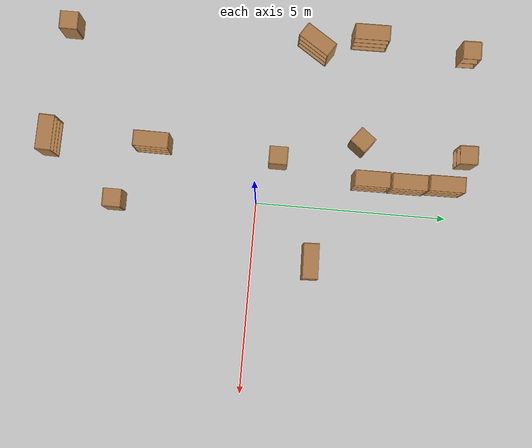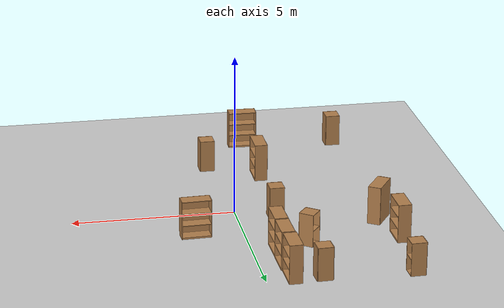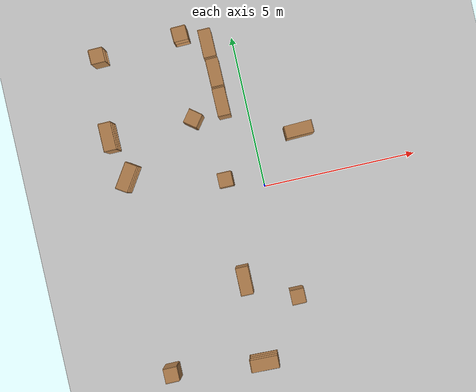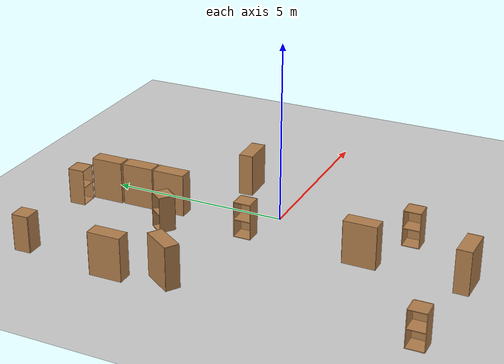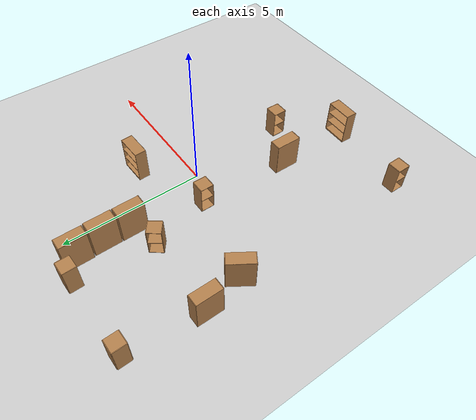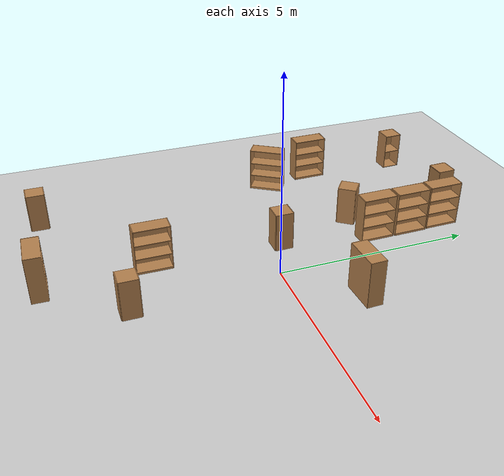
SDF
<sdf version="1.6">
 <world name="default">
  <model name="ground_plane">
   <static>1</static>
   <link name="link">
    <collision name="collision">
     <geometry><plane><normal>0 0 1</normal><size>100 100</size></plane></geometry>
     <surface>
      <contact><collide_bitmask>65535</collide_bitmask></contact>
      <friction><ode><mu>100</mu><mu2>50</mu2></ode></friction>
     </surface>
    </collision>
    <visual name="visual">
     <cast_shadows>0</cast_shadows>
     <geometry><plane><normal>0 0 1</normal><size>100 100</size></plane></geometry>
     <material>
      <script><uri>file://media/materials/scripts/gazebo.material</uri><name>Gazebo/Grey</name></script>
     </material>
    </visual>
   </link>
  </model>
  <model name="bookshelf_clone">
   <static>1</static>
   <link name="link">
    <inertial><mass>1</mass></inertial>
    <collision name="back">
     <pose>0 0.005 0.6 0 -0 0</pose>
     <geometry><box><size>0.9 0.01 1.2</size></box></geometry>
    </collision>
    <visual name="visual1">
     <pose>0 0.005 0.6 0 -0 0</pose>
     <geometry><box><size>0.9 0.01 1.2</size></box></geometry>
     <material>
      <script><uri>file://media/materials/scripts/gazebo.material</uri><name>Gazebo/Wood</name></script>
     </material>
    </visual>
    <collision name="left_side">
     <pose>0.45 -0.195 0.6 0 -0 0</pose>
     <geometry><box><size>0.02 0.4 1.2</size></box></geometry>
    </collision>
    <visual name="visual2">
     <pose>0.45 -0.195 0.6 0 -0 0</pose>
     <geometry><box><size>0.02 0.4 1.2</size></box></geometry>
     <material>
      <script><uri>file://media/materials/scripts/gazebo.material</uri><name>Gazebo/Wood</name></script>
     </material>
    </visual>
    <collision name="right_side">
     <pose>-0.45 -0.195 0.6 0 -0 0</pose>
     <geometry><box><size>0.02 0.4 1.2</size></box></geometry>
    </collision>
    <visual name="visual3">
     <pose>-0.45 -0.195 0.6 0 -0 0</pose>
     <geometry><box><size>0.02 0.4 1.2</size></box></geometry>
     <material>
      <script><uri>file://media/materials/scripts/gazebo.material</uri><name>Gazebo/Wood</name></script>
     </material>
    </visual>
    <collision name="bottom">
     <pose>0 -0.195 0.03 0 -0 0</pose>
     <geometry><box><size>0.88 0.4 0.06</size></box></geometry>
    </collision>
    <visual name="visual4">
     <pose>0 -0.195 0.03 0 -0 0</pose>
     <geometry><box><size>0.88 0.4 0.06</size></box></geometry>
     <material>
      <script><uri>file://media/materials/scripts/gazebo.material</uri><name>Gazebo/Wood</name></script>
     </material>
    </visual>
    <collision name="top">
     <pose>0 -0.195 1.19 0 -0 0</pose>
     <geometry><box><size>0.88 0.4 0.02</size></box></geometry>
    </collision>
    <visual name="visual5">
     <pose>0 -0.195 1.19 0 -0 0</pose>
     <geometry><box><size>0.88 0.4 0.02</size></box></geometry>
     <material>
      <script><uri>file://media/materials/scripts/gazebo.material</uri><name>Gazebo/Wood</name></script>
     </material>
    </visual>
    <collision name="low_shelf">
     <pose>0 -0.195 0.43 0 -0 0</pose>
     <geometry><box><size>0.88 0.4 0.02</size></box></geometry>
    </collision>
    <visual name="visual6">
     <pose>0 -0.195 0.43 0 -0 0</pose>
     <geometry><box><size>0.88 0.4 0.02</size></box></geometry>
     <material>
      <script><uri>file://media/materials/scripts/gazebo.material</uri><name>Gazebo/Wood</name></script>
     </material>
    </visual>
    <collision name="high_shelf">
     <pose>0 -0.195 0.8 0 -0 0</pose>
     <geometry><box><size>0.88 0.4 0.02</size></box></geometry>
    </collision>
    <visual name="visual7">
     <pose>0 -0.195 0.8 0 -0 0</pose>
     <geometry><box><size>0.88 0.4 0.02</size></box></geometry>
     <material>
      <script><uri>file://media/materials/scripts/gazebo.material</uri><name>Gazebo/Wood</name></script>
     </material>
    </visual>
   </link>
   <pose>-0.990469 4.82539 0 0 -0 1.57948</pose>
  </model>
  <model name="bookshelf_clone_2">
   <static>1</static>
   <link name="link">
    <inertial><mass>1</mass></inertial>
    <collision name="back">
     <pose>0 0.005 0.6 0 -0 0</pose>
     <geometry><box><size>0.9 0.01 1.2</size></box></geometry>
    </collision>
    <visual name="visual1">
     <pose>0 0.005 0.6 0 -0 0</pose>
     <geometry><box><size>0.9 0.01 1.2</size></box></geometry>
     <material>
      <script><uri>file://media/materials/scripts/gazebo.material</uri><name>Gazebo/Wood</name></script>
     </material>
    </visual>
    <collision name="left_side">
     <pose>0.45 -0.195 0.6 0 -0 0</pose>
     <geometry><box><size>0.02 0.4 1.2</size></box></geometry>
    </collision>
    <visual name="visual2">
     <pose>0.45 -0.195 0.6 0 -0 0</pose>
     <geometry><box><size>0.02 0.4 1.2</size></box></geometry>
     <material>
      <script><uri>file://media/materials/scripts/gazebo.material</uri><name>Gazebo/Wood</name></script>
     </material>
    </visual>
    <collision name="right_side">
     <pose>-0.45 -0.195 0.6 0 -0 0</pose>
     <geometry><box><size>0.02 0.4 1.2</size></box></geometry>
    </collision>
    <visual name="visual3">
     <pose>-0.45 -0.195 0.6 0 -0 0</pose>
     <geometry><box><size>0.02 0.4 1.2</size></box></geometry>
     <material>
      <script><uri>file://media/materials/scripts/gazebo.material</uri><name>Gazebo/Wood</name></script>
     </material>
    </visual>
    <collision name="bottom">
     <pose>0 -0.195 0.03 0 -0 0</pose>
     <geometry><box><size>0.88 0.4 0.06</size></box></geometry>
    </collision>
    <visual name="visual4">
     <pose>0 -0.195 0.03 0 -0 0</pose>
     <geometry><box><size>0.88 0.4 0.06</size></box></geometry>
     <material>
      <script><uri>file://media/materials/scripts/gazebo.material</uri><name>Gazebo/Wood</name></script>
     </material>
    </visual>
    <collision name="top">
     <pose>0 -0.195 1.19 0 -0 0</pose>
     <geometry><box><size>0.88 0.4 0.02</size></box></geometry>
    </collision>
    <visual name="visual5">
     <pose>0 -0.195 1.19 0 -0 0</pose>
     <geometry><box><size>0.88 0.4 0.02</size></box></geometry>
     <material>
      <script><uri>file://media/materials/scripts/gazebo.material</uri><name>Gazebo/Wood</name></script>
     </material>
    </visual>
    <collision name="low_shelf">
     <pose>0 -0.195 0.43 0 -0 0</pose>
     <geometry><box><size>0.88 0.4 0.02</size></box></geometry>
    </collision>
    <visual name="visual6">
     <pose>0 -0.195 0.43 0 -0 0</pose>
     <geometry><box><size>0.88 0.4 0.02</size></box></geometry>
     <material>
      <script><uri>file://media/materials/scripts/gazebo.material</uri><name>Gazebo/Wood</name></script>
     </material>
    </visual>
    <collision name="high_shelf">
     <pose>0 -0.195 0.8 0 -0 0</pose>
     <geometry><box><size>0.88 0.4 0.02</size></box></geometry>
    </collision>
    <visual name="visual7">
     <pose>0 -0.195 0.8 0 -0 0</pose>
     <geometry><box><size>0.88 0.4 0.02</size></box></geometry>
     <material>
      <script><uri>file://media/materials/scripts/gazebo.material</uri><name>Gazebo/Wood</name></script>
     </material>
    </visual>
   </link>
   <pose>-1.24809 -5.69317 0 0 -0 3.11328</pose>
  </model>
  <model name="bookshelf_clone_3">
   <static>1</static>
   <link name="link">
    <inertial><mass>1</mass></inertial>
    <collision name="back">
     <pose>0 0.005 0.6 0 -0 0</pose>
     <geometry><box><size>0.9 0.01 1.2</size></box></geometry>
    </collision>
    <visual name="visual1">
     <pose>0 0.005 0.6 0 -0 0</pose>
     <geometry><box><size>0.9 0.01 1.2</size></box></geometry>
     <material>
      <script><uri>file://media/materials/scripts/gazebo.material</uri><name>Gazebo/Wood</name></script>
     </material>
    </visual>
    <collision name="left_side">
     <pose>0.45 -0.195 0.6 0 -0 0</pose>
     <geometry><box><size>0.02 0.4 1.2</size></box></geometry>
    </collision>
    <visual name="visual2">
     <pose>0.45 -0.195 0.6 0 -0 0</pose>
     <geometry><box><size>0.02 0.4 1.2</size></box></geometry>
     <material>
      <script><uri>file://media/materials/scripts/gazebo.material</uri><name>Gazebo/Wood</name></script>
     </material>
    </visual>
    <collision name="right_side">
     <pose>-0.45 -0.195 0.6 0 -0 0</pose>
     <geometry><box><size>0.02 0.4 1.2</size></box></geometry>
    </collision>
    <visual name="visual3">
     <pose>-0.45 -0.195 0.6 0 -0 0</pose>
     <geometry><box><size>0.02 0.4 1.2</size></box></geometry>
     <material>
      <script><uri>file://media/materials/scripts/gazebo.material</uri><name>Gazebo/Wood</name></script>
     </material>
    </visual>
    <collision name="bottom">
     <pose>0 -0.195 0.03 0 -0 0</pose>
     <geometry><box><size>0.88 0.4 0.06</size></box></geometry>
    </collision>
    <visual name="visual4">
     <pose>0 -0.195 0.03 0 -0 0</pose>
     <geometry><box><size>0.88 0.4 0.06</size></box></geometry>
     <material>
      <script><uri>file://media/materials/scripts/gazebo.material</uri><name>Gazebo/Wood</name></script>
     </material>
    </visual>
    <collision name="top">
     <pose>0 -0.195 1.19 0 -0 0</pose>
     <geometry><box><size>0.88 0.4 0.02</size></box></geometry>
    </collision>
    <visual name="visual5">
     <pose>0 -0.195 1.19 0 -0 0</pose>
     <geometry><box><size>0.88 0.4 0.02</size></box></geometry>
     <material>
      <script><uri>file://media/materials/scripts/gazebo.material</uri><name>Gazebo/Wood</name></script>
     </material>
    </visual>
    <collision name="low_shelf">
     <pose>0 -0.195 0.43 0 -0 0</pose>
     <geometry><box><size>0.88 0.4 0.02</size></box></geometry>
    </collision>
    <visual name="visual6">
     <pose>0 -0.195 0.43 0 -0 0</pose>
     <geometry><box><size>0.88 0.4 0.02</size></box></geometry>
     <material>
      <script><uri>file://media/materials/scripts/gazebo.material</uri><name>Gazebo/Wood</name></script>
     </material>
    </visual>
    <collision name="high_shelf">
     <pose>0 -0.195 0.8 0 -0 0</pose>
     <geometry><box><size>0.88 0.4 0.02</size></box></geometry>
    </collision>
    <visual name="visual7">
     <pose>0 -0.195 0.8 0 -0 0</pose>
     <geometry><box><size>0.88 0.4 0.02</size></box></geometry>
     <material>
      <script><uri>file://media/materials/scripts/gazebo.material</uri><name>Gazebo/Wood</name></script>
     </material>
    </visual>
   </link>
   <pose>-1.48553 -2.79449 0 0 -0 1.56323</pose>
  </model>
  <model name="cabinet_clone">
   <static>1</static>
   <link name="cabinet_bottom_plate">
    <inertial>
     <pose>0 0 -1 0 -0 0</pose>
     <inertia><ixx>2.05</ixx><ixy>0</ixy><ixz>0</ixz><iyy>2.05</iyy><iyz>0</iyz><izz>2.05</izz></inertia>
     <mass>25</mass>
    </inertial>
    <collision name="cabinet_bottom_plate_geom">
     <pose>0 0 0.01 0 -0 0</pose>
     <geometry><box><size>0.45 0.45 0.02</size></box></geometry>
    </collision>
    <visual name="cabinet_bottom_plate_geom_visual">
     <pose>0 0 0.01 0 -0 0</pose>
     <geometry><box><size>0.45 0.45 0.02</size></box></geometry>
     <material>
      <script><uri>file://media/materials/scripts/gazebo.material</uri><name>Gazebo/Wood</name></script>
     </material>
    </visual>
    <collision name="cabinet_bottom_plate_geom_cabinet_back_plate">
     <pose>0.235 0 0.51 0 -0 0</pose>
     <geometry><box><size>0.02 0.45 1.02</size></box></geometry>
    </collision>
    <visual name="cabinet_bottom_plate_geom_cabinet_back_plate_visual">
     <pose>0.235 0 0.51 0 -0 0</pose>
     <geometry><box><size>0.02 0.45 1.02</size></box></geometry>
     <material>
      <script><uri>file://media/materials/scripts/gazebo.material</uri><name>Gazebo/Wood</name></script>
     </material>
    </visual>
    <collision name="cabinet_bottom_plate_geom_cabinet_left_plate">
     <pose>0 0.235 0.51 0 -0 0</pose>
     <geometry><box><size>0.45 0.02 1.02</size></box></geometry>
    </collision>
    <visual name="cabinet_bottom_plate_geom_cabinet_left_plate_visual">
     <pose>0 0.235 0.51 0 -0 0</pose>
     <geometry><box><size>0.45 0.02 1.02</size></box></geometry>
     <material>
      <script><uri>file://media/materials/scripts/gazebo.material</uri><name>Gazebo/Wood</name></script>
     </material>
    </visual>
    <collision name="cabinet_bottom_plate_geom_cabinet_middle_plate">
     <pose>0 0 0.51 0 -0 0</pose>
     <geometry><box><size>0.45 0.45 0.02</size></box></geometry>
    </collision>
    <visual name="cabinet_bottom_plate_geom_cabinet_middle_plate_visual">
     <pose>0 0 0.51 0 -0 0</pose>
     <geometry><box><size>0.45 0.45 0.02</size></box></geometry>
     <material>
      <script><uri>file://media/materials/scripts/gazebo.material</uri><name>Gazebo/Wood</name></script>
     </material>
    </visual>
    <collision name="cabinet_bottom_plate_geom_cabinet_right_plate">
     <pose>0 -0.235 0.51 0 -0 0</pose>
     <geometry><box><size>0.45 0.02 1.02</size></box></geometry>
    </collision>
    <visual name="cabinet_bottom_plate_geom_cabinet_right_plate_visual">
     <pose>0 -0.235 0.51 0 -0 0</pose>
     <geometry><box><size>0.45 0.02 1.02</size></box></geometry>
     <material>
      <script><uri>file://media/materials/scripts/gazebo.material</uri><name>Gazebo/Wood</name></script>
     </material>
    </visual>
    <collision name="cabinet_bottom_plate_geom_cabinet_top_plate">
     <pose>0 0 1.01 0 -0 0</pose>
     <geometry><box><size>0.45 0.45 0.02</size></box></geometry>
    </collision>
    <visual name="cabinet_bottom_plate_geom_cabinet_top_plate_visual">
     <pose>0 0 1.01 0 -0 0</pose>
     <geometry><box><size>0.45 0.45 0.02</size></box></geometry>
     <material>
      <script><uri>file://media/materials/scripts/gazebo.material</uri><name>Gazebo/Wood</name></script>
     </material>
    </visual>
   </link>
   <pose>-4.30746 5.22093 0.043779 0 0 -3.11635</pose>
  </model>
  <model name="bookshelf_clone_clone">
   <static>1</static>
   <link name="link">
    <inertial><mass>1</mass></inertial>
    <collision name="back">
     <pose>0 0.005 0.6 0 -0 0</pose>
     <geometry><box><size>0.9 0.01 1.2</size></box></geometry>
    </collision>
    <visual name="visual1">
     <pose>0 0.005 0.6 0 -0 0</pose>
     <geometry><box><size>0.9 0.01 1.2</size></box></geometry>
     <material>
      <script><uri>file://media/materials/scripts/gazebo.material</uri><name>Gazebo/Wood</name></script>
     </material>
    </visual>
    <collision name="left_side">
     <pose>0.45 -0.195 0.6 0 -0 0</pose>
     <geometry><box><size>0.02 0.4 1.2</size></box></geometry>
    </collision>
    <visual name="visual2">
     <pose>0.45 -0.195 0.6 0 -0 0</pose>
     <geometry><box><size>0.02 0.4 1.2</size></box></geometry>
     <material>
      <script><uri>file://media/materials/scripts/gazebo.material</uri><name>Gazebo/Wood</name></script>
     </material>
    </visual>
    <collision name="right_side">
     <pose>-0.45 -0.195 0.6 0 -0 0</pose>
     <geometry><box><size>0.02 0.4 1.2</size></box></geometry>
    </collision>
    <visual name="visual3">
     <pose>-0.45 -0.195 0.6 0 -0 0</pose>
     <geometry><box><size>0.02 0.4 1.2</size></box></geometry>
     <material>
      <script><uri>file://media/materials/scripts/gazebo.material</uri><name>Gazebo/Wood</name></script>
     </material>
    </visual>
    <collision name="bottom">
     <pose>0 -0.195 0.03 0 -0 0</pose>
     <geometry><box><size>0.88 0.4 0.06</size></box></geometry>
    </collision>
    <visual name="visual4">
     <pose>0 -0.195 0.03 0 -0 0</pose>
     <geometry><box><size>0.88 0.4 0.06</size></box></geometry>
     <material>
      <script><uri>file://media/materials/scripts/gazebo.material</uri><name>Gazebo/Wood</name></script>
     </material>
    </visual>
    <collision name="top">
     <pose>0 -0.195 1.19 0 -0 0</pose>
     <geometry><box><size>0.88 0.4 0.02</size></box></geometry>
    </collision>
    <visual name="visual5">
     <pose>0 -0.195 1.19 0 -0 0</pose>
     <geometry><box><size>0.88 0.4 0.02</size></box></geometry>
     <material>
      <script><uri>file://media/materials/scripts/gazebo.material</uri><name>Gazebo/Wood</name></script>
     </material>
    </visual>
    <collision name="low_shelf">
     <pose>0 -0.195 0.43 0 -0 0</pose>
     <geometry><box><size>0.88 0.4 0.02</size></box></geometry>
    </collision>
    <visual name="visual6">
     <pose>0 -0.195 0.43 0 -0 0</pose>
     <geometry><box><size>0.88 0.4 0.02</size></box></geometry>
     <material>
      <script><uri>file://media/materials/scripts/gazebo.material</uri><name>Gazebo/Wood</name></script>
     </material>
    </visual>
    <collision name="high_shelf">
     <pose>0 -0.195 0.8 0 -0 0</pose>
     <geometry><box><size>0.88 0.4 0.02</size></box></geometry>
    </collision>
    <visual name="visual7">
     <pose>0 -0.195 0.8 0 -0 0</pose>
     <geometry><box><size>0.88 0.4 0.02</size></box></geometry>
     <material>
      <script><uri>file://media/materials/scripts/gazebo.material</uri><name>Gazebo/Wood</name></script>
     </material>
    </visual>
   </link>
   <pose>-0.957403 3.86885 0 0 -0 1.57948</pose>
  </model>
  <model name="bookshelf_clone_clone_0">
   <static>1</static>
   <link name="link">
    <inertial><mass>1</mass></inertial>
    <collision name="back">
     <pose>0 0.005 0.6 0 -0 0</pose>
     <geometry><box><size>0.9 0.01 1.2</size></box></geometry>
    </collision>
    <visual name="visual1">
     <pose>0 0.005 0.6 0 -0 0</pose>
     <geometry><box><size>0.9 0.01 1.2</size></box></geometry>
     <material>
      <script><uri>file://media/materials/scripts/gazebo.material</uri><name>Gazebo/Wood</name></script>
     </material>
    </visual>
    <collision name="left_side">
     <pose>0.45 -0.195 0.6 0 -0 0</pose>
     <geometry><box><size>0.02 0.4 1.2</size></box></geometry>
    </collision>
    <visual name="visual2">
     <pose>0.45 -0.195 0.6 0 -0 0</pose>
     <geometry><box><size>0.02 0.4 1.2</size></box></geometry>
     <material>
      <script><uri>file://media/materials/scripts/gazebo.material</uri><name>Gazebo/Wood</name></script>
     </material>
    </visual>
    <collision name="right_side">
     <pose>-0.45 -0.195 0.6 0 -0 0</pose>
     <geometry><box><size>0.02 0.4 1.2</size></box></geometry>
    </collision>
    <visual name="visual3">
     <pose>-0.45 -0.195 0.6 0 -0 0</pose>
     <geometry><box><size>0.02 0.4 1.2</size></box></geometry>
     <material>
      <script><uri>file://media/materials/scripts/gazebo.material</uri><name>Gazebo/Wood</name></script>
     </material>
    </visual>
    <collision name="bottom">
     <pose>0 -0.195 0.03 0 -0 0</pose>
     <geometry><box><size>0.88 0.4 0.06</size></box></geometry>
    </collision>
    <visual name="visual4">
     <pose>0 -0.195 0.03 0 -0 0</pose>
     <geometry><box><size>0.88 0.4 0.06</size></box></geometry>
     <material>
      <script><uri>file://media/materials/scripts/gazebo.material</uri><name>Gazebo/Wood</name></script>
     </material>
    </visual>
    <collision name="top">
     <pose>0 -0.195 1.19 0 -0 0</pose>
     <geometry><box><size>0.88 0.4 0.02</size></box></geometry>
    </collision>
    <visual name="visual5">
     <pose>0 -0.195 1.19 0 -0 0</pose>
     <geometry><box><size>0.88 0.4 0.02</size></box></geometry>
     <material>
      <script><uri>file://media/materials/scripts/gazebo.material</uri><name>Gazebo/Wood</name></script>
     </material>
    </visual>
    <collision name="low_shelf">
     <pose>0 -0.195 0.43 0 -0 0</pose>
     <geometry><box><size>0.88 0.4 0.02</size></box></geometry>
    </collision>
    <visual name="visual6">
     <pose>0 -0.195 0.43 0 -0 0</pose>
     <geometry><box><size>0.88 0.4 0.02</size></box></geometry>
     <material>
      <script><uri>file://media/materials/scripts/gazebo.material</uri><name>Gazebo/Wood</name></script>
     </material>
    </visual>
    <collision name="high_shelf">
     <pose>0 -0.195 0.8 0 -0 0</pose>
     <geometry><box><size>0.88 0.4 0.02</size></box></geometry>
    </collision>
    <visual name="visual7">
     <pose>0 -0.195 0.8 0 -0 0</pose>
     <geometry><box><size>0.88 0.4 0.02</size></box></geometry>
     <material>
      <script><uri>file://media/materials/scripts/gazebo.material</uri><name>Gazebo/Wood</name></script>
     </material>
    </visual>
   </link>
   <pose>-0.955662 2.91292 0 0 -0 1.57948</pose>
  </model>
  <model name="bookshelf_clone_clone_1">
   <static>1</static>
   <link name="link">
    <inertial><mass>1</mass></inertial>
    <collision name="back">
     <pose>0 0.005 0.6 0 -0 0</pose>
     <geometry><box><size>0.9 0.01 1.2</size></box></geometry>
    </collision>
    <visual name="visual1">
     <pose>0 0.005 0.6 0 -0 0</pose>
     <geometry><box><size>0.9 0.01 1.2</size></box></geometry>
     <material>
      <script><uri>file://media/materials/scripts/gazebo.material</uri><name>Gazebo/Wood</name></script>
     </material>
    </visual>
    <collision name="left_side">
     <pose>0.45 -0.195 0.6 0 -0 0</pose>
     <geometry><box><size>0.02 0.4 1.2</size></box></geometry>
    </collision>
    <visual name="visual2">
     <pose>0.45 -0.195 0.6 0 -0 0</pose>
     <geometry><box><size>0.02 0.4 1.2</size></box></geometry>
     <material>
      <script><uri>file://media/materials/scripts/gazebo.material</uri><name>Gazebo/Wood</name></script>
     </material>
    </visual>
    <collision name="right_side">
     <pose>-0.45 -0.195 0.6 0 -0 0</pose>
     <geometry><box><size>0.02 0.4 1.2</size></box></geometry>
    </collision>
    <visual name="visual3">
     <pose>-0.45 -0.195 0.6 0 -0 0</pose>
     <geometry><box><size>0.02 0.4 1.2</size></box></geometry>
     <material>
      <script><uri>file://media/materials/scripts/gazebo.material</uri><name>Gazebo/Wood</name></script>
     </material>
    </visual>
    <collision name="bottom">
     <pose>0 -0.195 0.03 0 -0 0</pose>
     <geometry><box><size>0.88 0.4 0.06</size></box></geometry>
    </collision>
    <visual name="visual4">
     <pose>0 -0.195 0.03 0 -0 0</pose>
     <geometry><box><size>0.88 0.4 0.06</size></box></geometry>
     <material>
      <script><uri>file://media/materials/scripts/gazebo.material</uri><name>Gazebo/Wood</name></script>
     </material>
    </visual>
    <collision name="top">
     <pose>0 -0.195 1.19 0 -0 0</pose>
     <geometry><box><size>0.88 0.4 0.02</size></box></geometry>
    </collision>
    <visual name="visual5">
     <pose>0 -0.195 1.19 0 -0 0</pose>
     <geometry><box><size>0.88 0.4 0.02</size></box></geometry>
     <material>
      <script><uri>file://media/materials/scripts/gazebo.material</uri><name>Gazebo/Wood</name></script>
     </material>
    </visual>
    <collision name="low_shelf">
     <pose>0 -0.195 0.43 0 -0 0</pose>
     <geometry><box><size>0.88 0.4 0.02</size></box></geometry>
    </collision>
    <visual name="visual6">
     <pose>0 -0.195 0.43 0 -0 0</pose>
     <geometry><box><size>0.88 0.4 0.02</size></box></geometry>
     <material>
      <script><uri>file://media/materials/scripts/gazebo.material</uri><name>Gazebo/Wood</name></script>
     </material>
    </visual>
    <collision name="high_shelf">
     <pose>0 -0.195 0.8 0 -0 0</pose>
     <geometry><box><size>0.88 0.4 0.02</size></box></geometry>
    </collision>
    <visual name="visual7">
     <pose>0 -0.195 0.8 0 -0 0</pose>
     <geometry><box><size>0.88 0.4 0.02</size></box></geometry>
     <material>
      <script><uri>file://media/materials/scripts/gazebo.material</uri><name>Gazebo/Wood</name></script>
     </material>
    </visual>
   </link>
   <pose>1.45803 1.32606 0 0 0 -3.10742</pose>
  </model>
  <model name="bookshelf_clone_clone_2">
   <static>1</static>
   <link name="link">
    <inertial><mass>1</mass></inertial>
    <collision name="back">
     <pose>0 0.005 0.6 0 -0 0</pose>
     <geometry><box><size>0.9 0.01 1.2</size></box></geometry>
    </collision>
    <visual name="visual1">
     <pose>0 0.005 0.6 0 -0 0</pose>
     <geometry><box><size>0.9 0.01 1.2</size></box></geometry>
     <material>
      <script><uri>file://media/materials/scripts/gazebo.material</uri><name>Gazebo/Wood</name></script>
     </material>
    </visual>
    <collision name="left_side">
     <pose>0.45 -0.195 0.6 0 -0 0</pose>
     <geometry><box><size>0.02 0.4 1.2</size></box></geometry>
    </collision>
    <visual name="visual2">
     <pose>0.45 -0.195 0.6 0 -0 0</pose>
     <geometry><box><size>0.02 0.4 1.2</size></box></geometry>
     <material>
      <script><uri>file://media/materials/scripts/gazebo.material</uri><name>Gazebo/Wood</name></script>
     </material>
    </visual>
    <collision name="right_side">
     <pose>-0.45 -0.195 0.6 0 -0 0</pose>
     <geometry><box><size>0.02 0.4 1.2</size></box></geometry>
    </collision>
    <visual name="visual3">
     <pose>-0.45 -0.195 0.6 0 -0 0</pose>
     <geometry><box><size>0.02 0.4 1.2</size></box></geometry>
     <material>
      <script><uri>file://media/materials/scripts/gazebo.material</uri><name>Gazebo/Wood</name></script>
     </material>
    </visual>
    <collision name="bottom">
     <pose>0 -0.195 0.03 0 -0 0</pose>
     <geometry><box><size>0.88 0.4 0.06</size></box></geometry>
    </collision>
    <visual name="visual4">
     <pose>0 -0.195 0.03 0 -0 0</pose>
     <geometry><box><size>0.88 0.4 0.06</size></box></geometry>
     <material>
      <script><uri>file://media/materials/scripts/gazebo.material</uri><name>Gazebo/Wood</name></script>
     </material>
    </visual>
    <collision name="top">
     <pose>0 -0.195 1.19 0 -0 0</pose>
     <geometry><box><size>0.88 0.4 0.02</size></box></geometry>
    </collision>
    <visual name="visual5">
     <pose>0 -0.195 1.19 0 -0 0</pose>
     <geometry><box><size>0.88 0.4 0.02</size></box></geometry>
     <material>
      <script><uri>file://media/materials/scripts/gazebo.material</uri><name>Gazebo/Wood</name></script>
     </material>
    </visual>
    <collision name="low_shelf">
     <pose>0 -0.195 0.43 0 -0 0</pose>
     <geometry><box><size>0.88 0.4 0.02</size></box></geometry>
    </collision>
    <visual name="visual6">
     <pose>0 -0.195 0.43 0 -0 0</pose>
     <geometry><box><size>0.88 0.4 0.02</size></box></geometry>
     <material>
      <script><uri>file://media/materials/scripts/gazebo.material</uri><name>Gazebo/Wood</name></script>
     </material>
    </visual>
    <collision name="high_shelf">
     <pose>0 -0.195 0.8 0 -0 0</pose>
     <geometry><box><size>0.88 0.4 0.02</size></box></geometry>
    </collision>
    <visual name="visual7">
     <pose>0 -0.195 0.8 0 -0 0</pose>
     <geometry><box><size>0.88 0.4 0.02</size></box></geometry>
     <material>
      <script><uri>file://media/materials/scripts/gazebo.material</uri><name>Gazebo/Wood</name></script>
     </material>
    </visual>
   </link>
   <pose>-4.72678 2.62015 0 0 -0 1.57948</pose>
  </model>
  <model name="cabinet_clone_clone">
   <static>1</static>
   <link name="cabinet_bottom_plate">
    <inertial>
     <pose>0 0 -1 0 -0 0</pose>
     <inertia><ixx>2.05</ixx><ixy>0</ixy><ixz>0</ixz><iyy>2.05</iyy><iyz>0</iyz><izz>2.05</izz></inertia>
     <mass>25</mass>
    </inertial>
    <collision name="cabinet_bottom_plate_geom">
     <pose>0 0 0.01 0 -0 0</pose>
     <geometry><box><size>0.45 0.45 0.02</size></box></geometry>
    </collision>
    <visual name="cabinet_bottom_plate_geom_visual">
     <pose>0 0 0.01 0 -0 0</pose>
     <geometry><box><size>0.45 0.45 0.02</size></box></geometry>
     <material>
      <script><uri>file://media/materials/scripts/gazebo.material</uri><name>Gazebo/Wood</name></script>
     </material>
    </visual>
    <collision name="cabinet_bottom_plate_geom_cabinet_back_plate">
     <pose>0.235 0 0.51 0 -0 0</pose>
     <geometry><box><size>0.02 0.45 1.02</size></box></geometry>
    </collision>
    <visual name="cabinet_bottom_plate_geom_cabinet_back_plate_visual">
     <pose>0.235 0 0.51 0 -0 0</pose>
     <geometry><box><size>0.02 0.45 1.02</size></box></geometry>
     <material>
      <script><uri>file://media/materials/scripts/gazebo.material</uri><name>Gazebo/Wood</name></script>
     </material>
    </visual>
    <collision name="cabinet_bottom_plate_geom_cabinet_left_plate">
     <pose>0 0.235 0.51 0 -0 0</pose>
     <geometry><box><size>0.45 0.02 1.02</size></box></geometry>
    </collision>
    <visual name="cabinet_bottom_plate_geom_cabinet_left_plate_visual">
     <pose>0 0.235 0.51 0 -0 0</pose>
     <geometry><box><size>0.45 0.02 1.02</size></box></geometry>
     <material>
      <script><uri>file://media/materials/scripts/gazebo.material</uri><name>Gazebo/Wood</name></script>
     </material>
    </visual>
    <collision name="cabinet_bottom_plate_geom_cabinet_middle_plate">
     <pose>0 0 0.51 0 -0 0</pose>
     <geometry><box><size>0.45 0.45 0.02</size></box></geometry>
    </collision>
    <visual name="cabinet_bottom_plate_geom_cabinet_middle_plate_visual">
     <pose>0 0 0.51 0 -0 0</pose>
     <geometry><box><size>0.45 0.45 0.02</size></box></geometry>
     <material>
      <script><uri>file://media/materials/scripts/gazebo.material</uri><name>Gazebo/Wood</name></script>
     </material>
    </visual>
    <collision name="cabinet_bottom_plate_geom_cabinet_right_plate">
     <pose>0 -0.235 0.51 0 -0 0</pose>
     <geometry><box><size>0.45 0.02 1.02</size></box></geometry>
    </collision>
    <visual name="cabinet_bottom_plate_geom_cabinet_right_plate_visual">
     <pose>0 -0.235 0.51 0 -0 0</pose>
     <geometry><box><size>0.45 0.02 1.02</size></box></geometry>
     <material>
      <script><uri>file://media/materials/scripts/gazebo.material</uri><name>Gazebo/Wood</name></script>
     </material>
    </visual>
    <collision name="cabinet_bottom_plate_geom_cabinet_top_plate">
     <pose>0 0 1.01 0 -0 0</pose>
     <geometry><box><size>0.45 0.45 0.02</size></box></geometry>
    </collision>
    <visual name="cabinet_bottom_plate_geom_cabinet_top_plate_visual">
     <pose>0 0 1.01 0 -0 0</pose>
     <geometry><box><size>0.45 0.45 0.02</size></box></geometry>
     <material>
      <script><uri>file://media/materials/scripts/gazebo.material</uri><name>Gazebo/Wood</name></script>
     </material>
    </visual>
   </link>
   <pose>-1.5796 5.30586 0.15688 0 -0 1.6015</pose>
  </model>
  <model name="cabinet_clone_4">
   <static>1</static>
   <link name="cabinet_bottom_plate">
    <inertial>
     <pose>0 0 -1 0 -0 0</pose>
     <inertia><ixx>2.05</ixx><ixy>0</ixy><ixz>0</ixz><iyy>2.05</iyy><iyz>0</iyz><izz>2.05</izz></inertia>
     <mass>25</mass>
    </inertial>
    <collision name="cabinet_bottom_plate_geom">
     <pose>0 0 0.01 0 -0 0</pose>
     <geometry><box><size>0.45 0.45 0.02</size></box></geometry>
    </collision>
    <visual name="cabinet_bottom_plate_geom_visual">
     <pose>0 0 0.01 0 -0 0</pose>
     <geometry><box><size>0.45 0.45 0.02</size></box></geometry>
     <material>
      <script><uri>file://media/materials/scripts/gazebo.material</uri><name>Gazebo/Wood</name></script>
     </material>
    </visual>
    <collision name="cabinet_bottom_plate_geom_cabinet_back_plate">
     <pose>0.235 0 0.51 0 -0 0</pose>
     <geometry><box><size>0.02 0.45 1.02</size></box></geometry>
    </collision>
    <visual name="cabinet_bottom_plate_geom_cabinet_back_plate_visual">
     <pose>0.235 0 0.51 0 -0 0</pose>
     <geometry><box><size>0.02 0.45 1.02</size></box></geometry>
     <material>
      <script><uri>file://media/materials/scripts/gazebo.material</uri><name>Gazebo/Wood</name></script>
     </material>
    </visual>
    <collision name="cabinet_bottom_plate_geom_cabinet_left_plate">
     <pose>0 0.235 0.51 0 -0 0</pose>
     <geometry><box><size>0.45 0.02 1.02</size></box></geometry>
    </collision>
    <visual name="cabinet_bottom_plate_geom_cabinet_left_plate_visual">
     <pose>0 0.235 0.51 0 -0 0</pose>
     <geometry><box><size>0.45 0.02 1.02</size></box></geometry>
     <material>
      <script><uri>file://media/materials/scripts/gazebo.material</uri><name>Gazebo/Wood</name></script>
     </material>
    </visual>
    <collision name="cabinet_bottom_plate_geom_cabinet_middle_plate">
     <pose>0 0 0.51 0 -0 0</pose>
     <geometry><box><size>0.45 0.45 0.02</size></box></geometry>
    </collision>
    <visual name="cabinet_bottom_plate_geom_cabinet_middle_plate_visual">
     <pose>0 0 0.51 0 -0 0</pose>
     <geometry><box><size>0.45 0.45 0.02</size></box></geometry>
     <material>
      <script><uri>file://media/materials/scripts/gazebo.material</uri><name>Gazebo/Wood</name></script>
     </material>
    </visual>
    <collision name="cabinet_bottom_plate_geom_cabinet_right_plate">
     <pose>0 -0.235 0.51 0 -0 0</pose>
     <geometry><box><size>0.45 0.02 1.02</size></box></geometry>
    </collision>
    <visual name="cabinet_bottom_plate_geom_cabinet_right_plate_visual">
     <pose>0 -0.235 0.51 0 -0 0</pose>
     <geometry><box><size>0.45 0.02 1.02</size></box></geometry>
     <material>
      <script><uri>file://media/materials/scripts/gazebo.material</uri><name>Gazebo/Wood</name></script>
     </material>
    </visual>
    <collision name="cabinet_bottom_plate_geom_cabinet_top_plate">
     <pose>0 0 1.01 0 -0 0</pose>
     <geometry><box><size>0.45 0.45 0.02</size></box></geometry>
    </collision>
    <visual name="cabinet_bottom_plate_geom_cabinet_top_plate_visual">
     <pose>0 0 1.01 0 -0 0</pose>
     <geometry><box><size>0.45 0.45 0.02</size></box></geometry>
     <material>
      <script><uri>file://media/materials/scripts/gazebo.material</uri><name>Gazebo/Wood</name></script>
     </material>
    </visual>
   </link>
   <pose>0.255916 -3.6654 -0.005029 0 -0 0</pose>
  </model>
  <model name="cabinet_clone_5">
   <static>1</static>
   <link name="cabinet_bottom_plate">
    <inertial>
     <pose>0 0 -1 0 -0 0</pose>
     <inertia><ixx>2.05</ixx><ixy>0</ixy><ixz>0</ixz><iyy>2.05</iyy><iyz>0</iyz><izz>2.05</izz></inertia>
     <mass>25</mass>
    </inertial>
    <collision name="cabinet_bottom_plate_geom">
     <pose>0 0 0.01 0 -0 0</pose>
     <geometry><box><size>0.45 0.45 0.02</size></box></geometry>
    </collision>
    <visual name="cabinet_bottom_plate_geom_visual">
     <pose>0 0 0.01 0 -0 0</pose>
     <geometry><box><size>0.45 0.45 0.02</size></box></geometry>
     <material>
      <script><uri>file://media/materials/scripts/gazebo.material</uri><name>Gazebo/Wood</name></script>
     </material>
    </visual>
    <collision name="cabinet_bottom_plate_geom_cabinet_back_plate">
     <pose>0.235 0 0.51 0 -0 0</pose>
     <geometry><box><size>0.02 0.45 1.02</size></box></geometry>
    </collision>
    <visual name="cabinet_bottom_plate_geom_cabinet_back_plate_visual">
     <pose>0.235 0 0.51 0 -0 0</pose>
     <geometry><box><size>0.02 0.45 1.02</size></box></geometry>
     <material>
      <script><uri>file://media/materials/scripts/gazebo.material</uri><name>Gazebo/Wood</name></script>
     </material>
    </visual>
    <collision name="cabinet_bottom_plate_geom_cabinet_left_plate">
     <pose>0 0.235 0.51 0 -0 0</pose>
     <geometry><box><size>0.45 0.02 1.02</size></box></geometry>
    </collision>
    <visual name="cabinet_bottom_plate_geom_cabinet_left_plate_visual">
     <pose>0 0.235 0.51 0 -0 0</pose>
     <geometry><box><size>0.45 0.02 1.02</size></box></geometry>
     <material>
      <script><uri>file://media/materials/scripts/gazebo.material</uri><name>Gazebo/Wood</name></script>
     </material>
    </visual>
    <collision name="cabinet_bottom_plate_geom_cabinet_middle_plate">
     <pose>0 0 0.51 0 -0 0</pose>
     <geometry><box><size>0.45 0.45 0.02</size></box></geometry>
    </collision>
    <visual name="cabinet_bottom_plate_geom_cabinet_middle_plate_visual">
     <pose>0 0 0.51 0 -0 0</pose>
     <geometry><box><size>0.45 0.45 0.02</size></box></geometry>
     <material>
      <script><uri>file://media/materials/scripts/gazebo.material</uri><name>Gazebo/Wood</name></script>
     </material>
    </visual>
    <collision name="cabinet_bottom_plate_geom_cabinet_right_plate">
     <pose>0 -0.235 0.51 0 -0 0</pose>
     <geometry><box><size>0.45 0.02 1.02</size></box></geometry>
    </collision>
    <visual name="cabinet_bottom_plate_geom_cabinet_right_plate_visual">
     <pose>0 -0.235 0.51 0 -0 0</pose>
     <geometry><box><size>0.45 0.02 1.02</size></box></geometry>
     <material>
      <script><uri>file://media/materials/scripts/gazebo.material</uri><name>Gazebo/Wood</name></script>
     </material>
    </visual>
    <collision name="cabinet_bottom_plate_geom_cabinet_top_plate">
     <pose>0 0 1.01 0 -0 0</pose>
     <geometry><box><size>0.45 0.45 0.02</size></box></geometry>
    </collision>
    <visual name="cabinet_bottom_plate_geom_cabinet_top_plate_visual">
     <pose>0 0 1.01 0 -0 0</pose>
     <geometry><box><size>0.45 0.45 0.02</size></box></geometry>
     <material>
      <script><uri>file://media/materials/scripts/gazebo.material</uri><name>Gazebo/Wood</name></script>
     </material>
    </visual>
   </link>
   <pose>-1.18881 0.48109 -0.005029 0 -0 0</pose>
  </model>
  <model name="cabinet_clone_6">
   <static>1</static>
   <link name="cabinet_bottom_plate">
    <inertial>
     <pose>0 0 -1 0 -0 0</pose>
     <inertia><ixx>2.05</ixx><ixy>0</ixy><ixz>0</ixz><iyy>2.05</iyy><iyz>0</iyz><izz>2.05</izz></inertia>
     <mass>25</mass>
    </inertial>
    <collision name="cabinet_bottom_plate_geom">
     <pose>0 0 0.01 0 -0 0</pose>
     <geometry><box><size>0.45 0.45 0.02</size></box></geometry>
    </collision>
    <visual name="cabinet_bottom_plate_geom_visual">
     <pose>0 0 0.01 0 -0 0</pose>
     <geometry><box><size>0.45 0.45 0.02</size></box></geometry>
     <material>
      <script><uri>file://media/materials/scripts/gazebo.material</uri><name>Gazebo/Wood</name></script>
     </material>
    </visual>
    <collision name="cabinet_bottom_plate_geom_cabinet_back_plate">
     <pose>0.235 0 0.51 0 -0 0</pose>
     <geometry><box><size>0.02 0.45 1.02</size></box></geometry>
    </collision>
    <visual name="cabinet_bottom_plate_geom_cabinet_back_plate_visual">
     <pose>0.235 0 0.51 0 -0 0</pose>
     <geometry><box><size>0.02 0.45 1.02</size></box></geometry>
     <material>
      <script><uri>file://media/materials/scripts/gazebo.material</uri><name>Gazebo/Wood</name></script>
     </material>
    </visual>
    <collision name="cabinet_bottom_plate_geom_cabinet_left_plate">
     <pose>0 0.235 0.51 0 -0 0</pose>
     <geometry><box><size>0.45 0.02 1.02</size></box></geometry>
    </collision>
    <visual name="cabinet_bottom_plate_geom_cabinet_left_plate_visual">
     <pose>0 0.235 0.51 0 -0 0</pose>
     <geometry><box><size>0.45 0.02 1.02</size></box></geometry>
     <material>
      <script><uri>file://media/materials/scripts/gazebo.material</uri><name>Gazebo/Wood</name></script>
     </material>
    </visual>
    <collision name="cabinet_bottom_plate_geom_cabinet_middle_plate">
     <pose>0 0 0.51 0 -0 0</pose>
     <geometry><box><size>0.45 0.45 0.02</size></box></geometry>
    </collision>
    <visual name="cabinet_bottom_plate_geom_cabinet_middle_plate_visual">
     <pose>0 0 0.51 0 -0 0</pose>
     <geometry><box><size>0.45 0.45 0.02</size></box></geometry>
     <material>
      <script><uri>file://media/materials/scripts/gazebo.material</uri><name>Gazebo/Wood</name></script>
     </material>
    </visual>
    <collision name="cabinet_bottom_plate_geom_cabinet_right_plate">
     <pose>0 -0.235 0.51 0 -0 0</pose>
     <geometry><box><size>0.45 0.02 1.02</size></box></geometry>
    </collision>
    <visual name="cabinet_bottom_plate_geom_cabinet_right_plate_visual">
     <pose>0 -0.235 0.51 0 -0 0</pose>
     <geometry><box><size>0.45 0.02 1.02</size></box></geometry>
     <material>
      <script><uri>file://media/materials/scripts/gazebo.material</uri><name>Gazebo/Wood</name></script>
     </material>
    </visual>
    <collision name="cabinet_bottom_plate_geom_cabinet_top_plate">
     <pose>0 0 1.01 0 -0 0</pose>
     <geometry><box><size>0.45 0.45 0.02</size></box></geometry>
    </collision>
    <visual name="cabinet_bottom_plate_geom_cabinet_top_plate_visual">
     <pose>0 0 1.01 0 -0 0</pose>
     <geometry><box><size>0.45 0.45 0.02</size></box></geometry>
     <material>
      <script><uri>file://media/materials/scripts/gazebo.material</uri><name>Gazebo/Wood</name></script>
     </material>
    </visual>
   </link>
   <pose>-4.23061 -5.21462 -0.005029 0 -0 0</pose>
  </model>
  <model name="bookshelf_clone_2_clone">
   <static>1</static>
   <link name="link">
    <inertial><mass>1</mass></inertial>
    <collision name="back">
     <pose>0 0.005 0.6 0 -0 0</pose>
     <geometry><box><size>0.9 0.01 1.2</size></box></geometry>
    </collision>
    <visual name="visual1">
     <pose>0 0.005 0.6 0 -0 0</pose>
     <geometry><box><size>0.9 0.01 1.2</size></box></geometry>
     <material>
      <script><uri>file://media/materials/scripts/gazebo.material</uri><name>Gazebo/Wood</name></script>
     </material>
    </visual>
    <collision name="left_side">
     <pose>0.45 -0.195 0.6 0 -0 0</pose>
     <geometry><box><size>0.02 0.4 1.2</size></box></geometry>
    </collision>
    <visual name="visual2">
     <pose>0.45 -0.195 0.6 0 -0 0</pose>
     <geometry><box><size>0.02 0.4 1.2</size></box></geometry>
     <material>
      <script><uri>file://media/materials/scripts/gazebo.material</uri><name>Gazebo/Wood</name></script>
     </material>
    </visual>
    <collision name="right_side">
     <pose>-0.45 -0.195 0.6 0 -0 0</pose>
     <geometry><box><size>0.02 0.4 1.2</size></box></geometry>
    </collision>
    <visual name="visual3">
     <pose>-0.45 -0.195 0.6 0 -0 0</pose>
     <geometry><box><size>0.02 0.4 1.2</size></box></geometry>
     <material>
      <script><uri>file://media/materials/scripts/gazebo.material</uri><name>Gazebo/Wood</name></script>
     </material>
    </visual>
    <collision name="bottom">
     <pose>0 -0.195 0.03 0 -0 0</pose>
     <geometry><box><size>0.88 0.4 0.06</size></box></geometry>
    </collision>
    <visual name="visual4">
     <pose>0 -0.195 0.03 0 -0 0</pose>
     <geometry><box><size>0.88 0.4 0.06</size></box></geometry>
     <material>
      <script><uri>file://media/materials/scripts/gazebo.material</uri><name>Gazebo/Wood</name></script>
     </material>
    </visual>
    <collision name="top">
     <pose>0 -0.195 1.19 0 -0 0</pose>
     <geometry><box><size>0.88 0.4 0.02</size></box></geometry>
    </collision>
    <visual name="visual5">
     <pose>0 -0.195 1.19 0 -0 0</pose>
     <geometry><box><size>0.88 0.4 0.02</size></box></geometry>
     <material>
      <script><uri>file://media/materials/scripts/gazebo.material</uri><name>Gazebo/Wood</name></script>
     </material>
    </visual>
    <collision name="low_shelf">
     <pose>0 -0.195 0.43 0 -0 0</pose>
     <geometry><box><size>0.88 0.4 0.02</size></box></geometry>
    </collision>
    <visual name="visual6">
     <pose>0 -0.195 0.43 0 -0 0</pose>
     <geometry><box><size>0.88 0.4 0.02</size></box></geometry>
     <material>
      <script><uri>file://media/materials/scripts/gazebo.material</uri><name>Gazebo/Wood</name></script>
     </material>
    </visual>
    <collision name="high_shelf">
     <pose>0 -0.195 0.8 0 -0 0</pose>
     <geometry><box><size>0.88 0.4 0.02</size></box></geometry>
    </collision>
    <visual name="visual7">
     <pose>0 -0.195 0.8 0 -0 0</pose>
     <geometry><box><size>0.88 0.4 0.02</size></box></geometry>
     <material>
      <script><uri>file://media/materials/scripts/gazebo.material</uri><name>Gazebo/Wood</name></script>
     </material>
    </visual>
   </link>
   <pose>-4.38481 1.34359 0 0 -0 0.991347</pose>
  </model>
  <model name="cabinet_clone_5_clone_0">
   <static>1</static>
   <link name="cabinet_bottom_plate">
    <inertial>
     <pose>0 0 -1 0 -0 0</pose>
     <inertia><ixx>2.05</ixx><ixy>0</ixy><ixz>0</ixz><iyy>2.05</iyy><iyz>0</iyz><izz>2.05</izz></inertia>
     <mass>25</mass>
    </inertial>
    <collision name="cabinet_bottom_plate_geom">
     <pose>0 0 0.01 0 -0 0</pose>
     <geometry><box><size>0.45 0.45 0.02</size></box></geometry>
    </collision>
    <visual name="cabinet_bottom_plate_geom_visual">
     <pose>0 0 0.01 0 -0 0</pose>
     <geometry><box><size>0.45 0.45 0.02</size></box></geometry>
     <material>
      <script><uri>file://media/materials/scripts/gazebo.material</uri><name>Gazebo/Wood</name></script>
     </material>
    </visual>
    <collision name="cabinet_bottom_plate_geom_cabinet_back_plate">
     <pose>0.235 0 0.51 0 -0 0</pose>
     <geometry><box><size>0.02 0.45 1.02</size></box></geometry>
    </collision>
    <visual name="cabinet_bottom_plate_geom_cabinet_back_plate_visual">
     <pose>0.235 0 0.51 0 -0 0</pose>
     <geometry><box><size>0.02 0.45 1.02</size></box></geometry>
     <material>
      <script><uri>file://media/materials/scripts/gazebo.material</uri><name>Gazebo/Wood</name></script>
     </material>
    </visual>
    <collision name="cabinet_bottom_plate_geom_cabinet_left_plate">
     <pose>0 0.235 0.51 0 -0 0</pose>
     <geometry><box><size>0.45 0.02 1.02</size></box></geometry>
    </collision>
    <visual name="cabinet_bottom_plate_geom_cabinet_left_plate_visual">
     <pose>0 0.235 0.51 0 -0 0</pose>
     <geometry><box><size>0.45 0.02 1.02</size></box></geometry>
     <material>
      <script><uri>file://media/materials/scripts/gazebo.material</uri><name>Gazebo/Wood</name></script>
     </material>
    </visual>
    <collision name="cabinet_bottom_plate_geom_cabinet_middle_plate">
     <pose>0 0 0.51 0 -0 0</pose>
     <geometry><box><size>0.45 0.45 0.02</size></box></geometry>
    </collision>
    <visual name="cabinet_bottom_plate_geom_cabinet_middle_plate_visual">
     <pose>0 0 0.51 0 -0 0</pose>
     <geometry><box><size>0.45 0.45 0.02</size></box></geometry>
     <material>
      <script><uri>file://media/materials/scripts/gazebo.material</uri><name>Gazebo/Wood</name></script>
     </material>
    </visual>
    <collision name="cabinet_bottom_plate_geom_cabinet_right_plate">
     <pose>0 -0.235 0.51 0 -0 0</pose>
     <geometry><box><size>0.45 0.02 1.02</size></box></geometry>
    </collision>
    <visual name="cabinet_bottom_plate_geom_cabinet_right_plate_visual">
     <pose>0 -0.235 0.51 0 -0 0</pose>
     <geometry><box><size>0.45 0.02 1.02</size></box></geometry>
     <material>
      <script><uri>file://media/materials/scripts/gazebo.material</uri><name>Gazebo/Wood</name></script>
     </material>
    </visual>
    <collision name="cabinet_bottom_plate_geom_cabinet_top_plate">
     <pose>0 0 1.01 0 -0 0</pose>
     <geometry><box><size>0.45 0.45 0.02</size></box></geometry>
    </collision>
    <visual name="cabinet_bottom_plate_geom_cabinet_top_plate_visual">
     <pose>0 0 1.01 0 -0 0</pose>
     <geometry><box><size>0.45 0.45 0.02</size></box></geometry>
     <material>
      <script><uri>file://media/materials/scripts/gazebo.material</uri><name>Gazebo/Wood</name></script>
     </material>
    </visual>
   </link>
   <pose>-1.76811 2.61365 -0.005029 0 0 -0.652799</pose>
  </model>
 </world>
</sdf>
